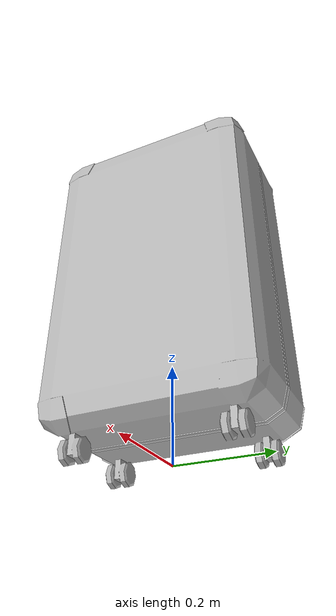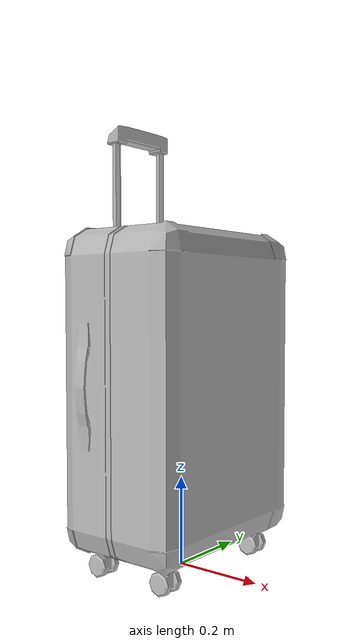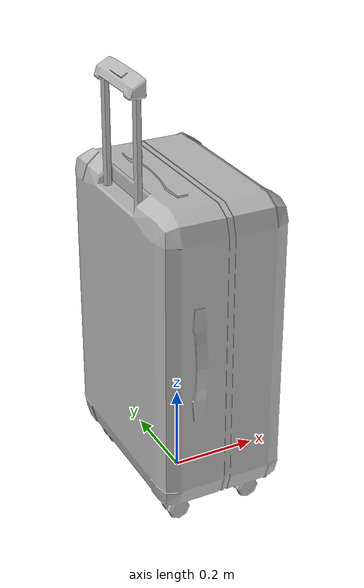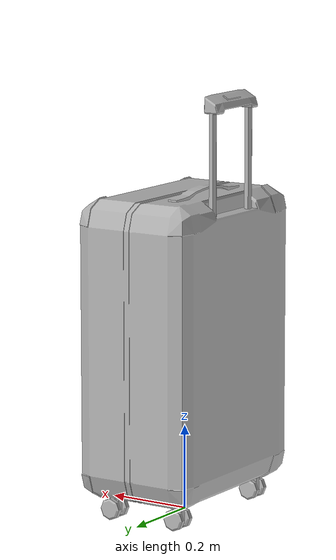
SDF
<?xml version='1.0' encoding='utf-8'?>
<sdf version="1.6">
  <model name="Suitcase1H">
   <static>true</static>
    <link name="body">
      <pose>0 0 0 0 0 0</pose>

      <visual name="visual">
        <geometry>
          <mesh>
            <uri>model://Suitcase1H/meshes/Suitcase1H.obj</uri>
          </mesh>
        </geometry>
      </visual>

      <collision name="collision">
        <geometry>
          <mesh>
            <uri>model://Suitcase1H/meshes/Suitcase1H_Col.obj</uri>
          </mesh>
        </geometry>
      </collision>

    </link>
  </model>
</sdf>
